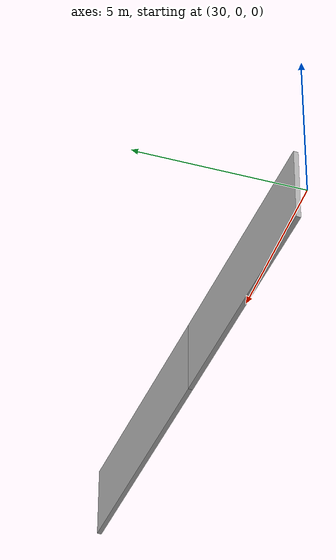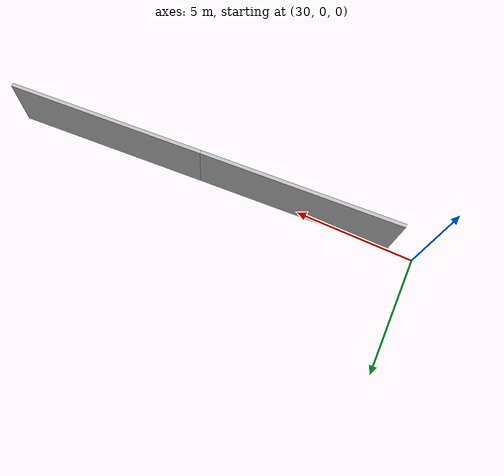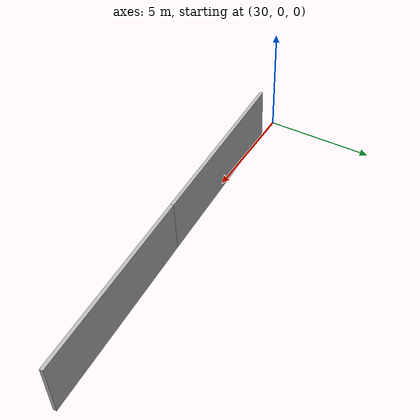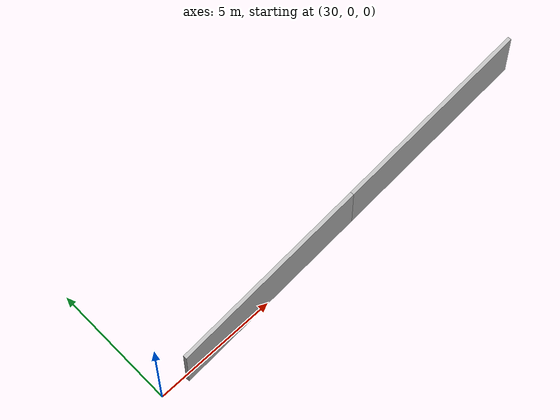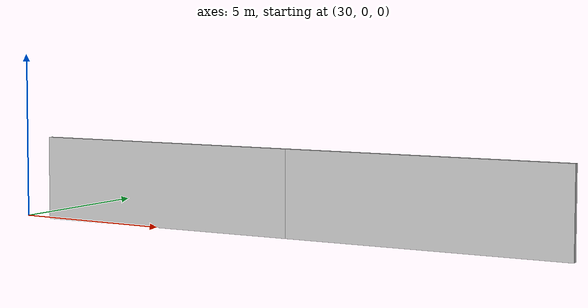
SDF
<?xml version="1.0" ?>
<sdf version="1.6">
  <model name="sps_4702">
    <pose frame="">0 0 0 0 -0 0</pose>
    <static>1</static>
    <self_collide>0</self_collide>
    <allow_auto_disable>0</allow_auto_disable>
    <link name="Wall8948">
      <kinematic>0</kinematic>
      <gravity>1</gravity>
      <self_collide>0</self_collide>
      <collision name="collision">
        <geometry>
          <box>
            <size>8.25191 0.15 2.5</size>
          </box>
        </geometry>
        <pose frame="">0 0 0 0 -0 0</pose>
      </collision>
      <visual name="visual">
        <geometry>
          <box>
            <size>8.25191 0.15 2.5</size>
          </box>
        </geometry>
        <pose frame="">0 0 0 0 -0 0</pose>
        <cast_shadows>1</cast_shadows>
        <transparency>0.0</transparency>
      </visual>
      <pose frame="">35.1831 0.0637959 1.25 0 -0 0.0509394</pose>
    </link>
    <link name="Wall8949">
      <kinematic>0</kinematic>
      <gravity>1</gravity>
      <self_collide>0</self_collide>
      <collision name="collision">
        <geometry>
          <box>
            <size>8.25189 0.15 2.5</size>
          </box>
        </geometry>
        <pose frame="">0 0 0 0 -0 0</pose>
      </collision>
      <visual name="visual">
        <geometry>
          <box>
            <size>8.25189 0.15 2.5</size>
          </box>
        </geometry>
        <pose frame="">0 0 0 0 -0 0</pose>
        <cast_shadows>1</cast_shadows>
        <transparency>0.0</transparency>
      </visual>
      <pose frame="">43.4238 0.493697 1.25 0 -0 0.0533023</pose>
    </link>
  </model>
</sdf>
